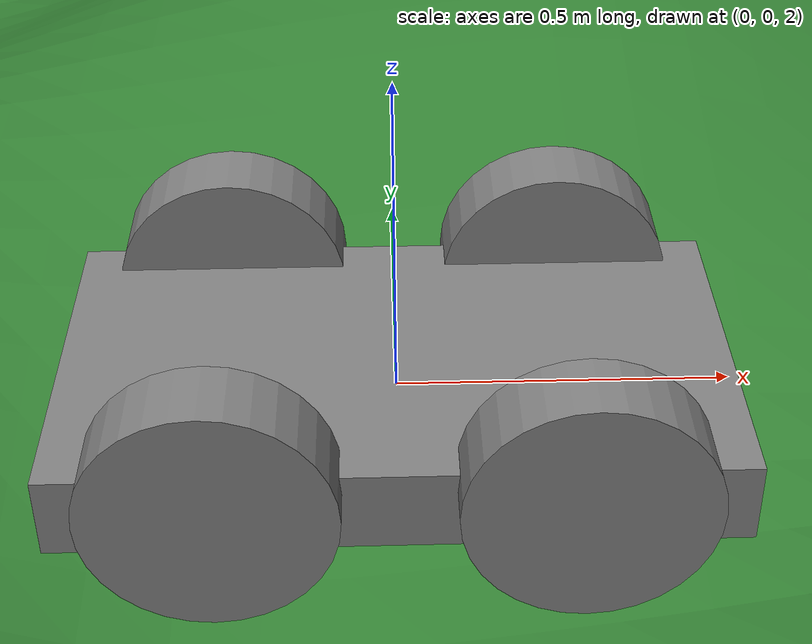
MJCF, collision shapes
<mujoco model="uneven_terrain_scene_mjx">
  <compiler angle="radian" coordinate="local" meshdir="./stls/dual_ur5_husky" texturedir="./textures"/>

  <option timestep="0.002"
          iterations="10"
          tolerance="1e-10"
          impratio="10"
          gravity="0 0 -9.81"
          solver="Newton"
          cone="elliptic"/>

  <size nuserdata="100" njmax="500" nconmax="1000" nstack="600000" nuser_body="9" nuser_jnt="1" nuser_site="1" nuser_tendon="1" nuser_actuator="12" nuser_sensor="1"/>

  <visual>
    <headlight diffuse="0.6 0.6 0.6" ambient="0.3 0.3 0.3" specular="0 0 0"/>
    <rgba haze="0.15 0.25 0.35 1"/>
    <global offwidth="2048" offheight="1536" azimuth="-120" elevation="-20"/>
    <map fogstart="3" fogend="5" force="0.1" znear="0.1"/>
    <quality shadowsize="8192"/>
  </visual>

  <default>
    <geom contype="1" conaffinity="1" margin="0.002" solimp="0.95 0.95 0.01" solref="0.01 1" condim="4" friction="1.2 0.05 0.05"/>
    <joint armature="0.01" damping="0.1"/>
    <default class="UR5">
      <joint damping="200"/>
    </default>
    <default class="UR5e">
      <joint damping="100"/>
    </default>
    <default class="GRIPPER">
      <joint damping="5"/>
      <geom rgba="0.424 0.424 0.424 1.0" contype="1" conaffinity="1" margin="0.002" solimp="0.95 0.95 0.01" solref="0.01 1" condim="4" type="mesh"/>
    </default>
    <default class="ur5:blue">
      <geom rgba="0.635 0.784 0.910 1.0"/>
    </default>
    <default class="ur5:grey">
      <geom rgba="0.365 0.365 0.365 1.0"/>
    </default>
    <default class="ur5:black">
      <geom rgba="0.106 0.106 0.106 1.0"/>
    </default>
    <default class="husky:orange">
      <geom rgba="0.996 0.941 0.412 1.0"/>
    </default>
    <default class="husky:black">
      <geom rgba="0.192 0.192 0.192 1.0"/>
    </default>
    <default class="gripper:black">
      <geom rgba="0.424 0.424 0.424 1.0"/>
    </default>
    <default class="gripper:white">
      <geom rgba="0.898 0.898 0.898 1.0" contype="1" conaffinity="1" margin="0.002" solimp="0.95 0.95 0.01" solref="0.01 1" condim="4" type="mesh"/>
    </default>
    <default class="bb2_camera">
      <geom rgba="0.776 0.624 0.294 1.0"/>
    </default>
    <default class="wheel">
      <geom rgba="0.231 0.231 0.231 1.0" friction="2.0 0.1 0.1"/>
    </default>
    <default class="sick_lidar">
      <geom rgba="0.761 0.714 0.576 1.0"/>
    </default>
    <default class="dual_ur5_husky">
      <geom rgba="0.761 0.714 0.576 1.0"/>
    </default>
  </default>

  <asset>
    <texture type="skybox" builtin="gradient" rgb1="0.3 0.5 0.7" rgb2="0 0 0" width="512" height="3072"/>
    <texture builtin="checker" height="512" name="texplane" rgb1="0.2 0.3 0.4" rgb2="0.1 0.15 0.2" type="2d" width="512"/>
    <texture builtin="flat" height="1278" mark="cross" markrgb="1 1 1" name="texgeom" random="0.01" rgb1="0.8 0.6 0.4" rgb2="0.8 0.6 0.4" type="cube" width="127"/>
    <texture name="texture_block" file="block.png" gridsize="3 4" gridlayout=".U..LFRB.D.."/>
    <texture type="skybox" builtin="gradient" rgb1="0.44 0.85 0.56" rgb2="0.46 0.87 0.58" width="32" height="32"/>
    <texture file="can.png" name="tex-can"/>
    <material name="floorplane" reflectance="0.5" texrepeat="1 1" texture="texplane" texuniform="true"/>
    <material name="floor_mat" specular="0" shininess="0.5" reflectance="0" rgba="0.2 0.2 0.2 1"/>
    <material name="table_mat" specular="0" shininess="0.5" reflectance="0" rgba="0.93 0.93 0.93 1"/>
    <material name="block_mat" specular="0" shininess="0.5" reflectance="0" rgba="0.2 0.2 0.2 1"/>
    <material name="puck_mat" specular="0" shininess="0.5" reflectance="0" rgba="0.2 0.2 0.2 1"/>
    <material name="MatPlane" reflectance="0.5" shininess="1" specular="1" texrepeat="60 60" texture="texplane"/>
    <material name="geom" texture="texgeom" texuniform="true"/>
    <material name="robot0:geomMat" shininess="0.03" specular="0.4"/>
    <material name="coke" reflectance="0.7" texrepeat="5 5" texture="tex-can" texuniform="true"/>
    <material name="plain" rgba="0.2 0.5 0.2 1"/>
    <mesh name="base_link" file="base_link.stl"/>
    <mesh name="wheel" file="wheel.stl"/>
    <mesh name="top_chassis" file="top_chassis.stl"/>
    <mesh name="bumper" file="bumper.stl"/>
    <mesh name="dual_arm_bulkhead" file="dual_arm_bulkhead.stl"/>
    <mesh name="flir-ptu-simple" file="flir-ptu-simple.stl"/>
    <mesh name="base" file="base.stl"/>
    <mesh name="shoulder" file="shoulder.stl"/>
    <mesh name="upperarm" file="upperarm.stl"/>
    <mesh name="forearm" file="forearm.stl"/>
    <mesh name="wrist1" file="wrist1.stl"/>
    <mesh name="wrist2" file="wrist2.stl"/>
    <mesh name="wrist3" file="wrist3.stl"/>
    <mesh name="sick-lms1xx" file="sick-lms1xx.stl"/>
    <mesh name="pointgrey_bumblebee2" file="pointgrey_bumblebee2.stl"/>
    <mesh name="robotiq_fts300" file="robotiq_fts300.stl"/>
    <mesh name="link_0" file="link_0.STL"/>
    <mesh name="link_1" file="link_1.STL"/>
    <mesh name="link_2" file="link_2.STL"/>
    <mesh name="link_3" file="link_3.STL"/>
    <mesh name="palm" file="palm.STL"/>
    <mesh name="collision_link_0" file="collision_link_0.STL"/>
    <mesh name="collision_link_1" file="collision_link_1.STL"/>
    <mesh name="collision_link_2" file="collision_link_2.STL"/>
    <mesh name="collision_link_3" file="collision_link_3.STL"/>
    <mesh name="collision_palm" file="collision_palm.STL"/>
    <mesh file="can.stl" name="can_mesh" scale="2.0 2.0 2.0"/>
    <mesh name="terrain_mesh" file="terrain.stl"/>
    <mesh name="wheel_cylinder" file="wheel_cylinder.stl"/>
  </asset>

  <worldbody>
    <camera name="fixed" pos="0 -2 2" zaxis="0 -1 1"/>  <!-- Added camera -->
    <light directional="true" ambient="0.2 0.2 0.2" diffuse="0.8 0.8 0.8" specular="0.3 0.3 0.3" castshadow="false" pos="0 0 4" dir="0 0 -1" name="light0"/>
    <geom name="terrain" type="mesh" mesh="terrain_mesh" material="plain" friction="1.0 0.005 0.0001" condim="6" solimp="0.8 0.9 0.1" solref="0.005 2" margin="0"/>

    <body name="robot0:base_link" pos="0 0 2.0">
      <geom name="base_link_visual" type="mesh" contype="0" conaffinity="0" group="1" mesh="base_link"/>
      <geom name="base_link_collision" size="0.4937 0.28545 0.061875" type="box" friction="1.5 0.1 0.1" margin="0"/>
      <freejoint name="robot0:root"/>
      <inertial diaginertia="1.2869 1.2236 0.9868" mass="70.1294" pos="-0.0036 0 0.0014" quat="0.7605 -0.0133 -0.0061 0.6491"/>
      <geom type="mesh" contype="0" conaffinity="0" group="1" mesh="top_chassis" class="husky:orange"/>
      <geom pos="0.48 0 0.091" type="mesh" contype="0" conaffinity="0" group="1" mesh="bumper"/>
      <geom pos="-0.48 0 0.091" quat="1.32679e-06 0 0 1" type="mesh" contype="0" conaffinity="0" group="1" mesh="bumper"/>
      <geom pos="0 0 0.225" type="mesh" contype="0" conaffinity="0" group="1" mesh="dual_arm_bulkhead"/>
      <geom pos="0.465 0 0.14" quat="1.32679e-06 1 0 0" type="mesh" contype="0" conaffinity="0" group="1" mesh="sick-lms1xx" class="sick_lidar"/>

      <body name="front_left_wheel_link" pos="0.256 0.2854 0.03282">
        <inertial pos="0 0 0" quat="0.5 0.5 -0.5 0.5" mass="200.637" diaginertia="0.04411 0.02467 0.02467"/>
        <joint name="front_left_wheel" pos="0 0 0" axis="0 1 0" damping="0.5" armature="0.05"/>
        <geom type="mesh" contype="0" conaffinity="0" group="1" mesh="wheel" class="wheel"/>
        <geom type="mesh" mesh="wheel_cylinder" friction="1.5 0.1 0.1" margin="0"/>
      </body>
      <body name="front_right_wheel_link" pos="0.256 -0.2854 0.03282">
        <inertial pos="0 0 0" quat="0.5 0.5 -0.5 0.5" mass="200.637" diaginertia="0.04411 0.02467 0.02467"/>
        <joint name="front_right_wheel" pos="0 0 0" axis="0 1 0" damping="0.5" armature="0.05"/>
        <geom type="mesh" contype="0" conaffinity="0" group="1" mesh="wheel" class="wheel"/>
        <geom type="mesh" mesh="wheel_cylinder" friction="1.5 0.1 0.1" margin="0"/>
      </body>
      <body name="rear_left_wheel_link" pos="-0.256 0.2854 0.03282">
        <inertial pos="0 0 0" quat="0.5 0.5 -0.5 0.5" mass="200.637" diaginertia="0.04411 0.02467 0.02467"/>
        <joint name="rear_left_wheel" pos="0 0 0" axis="0 1 0" damping="0.3" armature="0.2"/>
        <geom type="mesh" contype="0" conaffinity="0" group="1" mesh="wheel" class="wheel"/>
        <geom type="mesh" mesh="wheel_cylinder" friction="1.5 0.1 0.1" solimp="0.99 0.99 0.01" solref="0.02 1" margin="0"/>
      </body>
      <body name="rear_right_wheel_link" pos="-0.256 -0.2854 0.03282">
        <inertial pos="0 0 0" quat="0.5 0.5 -0.5 0.5" mass="200.637" diaginertia="0.04411 0.02467 0.02467"/>
        <joint name="rear_right_wheel" pos="0 0 0" axis="0 1 0" damping="0.3" armature="0.2"/>
        <geom type="mesh" contype="0" conaffinity="0" group="1" mesh="wheel" class="wheel"/>
        <geom type="mesh" mesh="wheel_cylinder" friction="1.5 0.1 0.1" solimp="0.99 0.99 0.01" solref="0.02 1" margin="0"/>
      </body>
    </body>
  </worldbody>

  <tendon>
    <fixed name="forward">
      <joint joint="rear_left_wheel" coef="0.5"/>
      <joint joint="rear_right_wheel" coef="0.5"/>
    </fixed>
    <fixed name="turn">
      <joint joint="rear_left_wheel" coef="-0.5"/>
      <joint joint="rear_right_wheel" coef="0.5"/>
    </fixed>
  </tendon>

  <actuator>
    <motor name="forward" tendon="forward" ctrlrange="-8.0 8.0" gear="150"/>
    <motor name="turn" tendon="turn" ctrlrange="-8.0 8.0" gear="150"/>
  </actuator>

  <sensor>
    <jointactuatorfrc name="rear_left_force" joint="rear_left_wheel"/>
    <jointactuatorfrc name="rear_right_force" joint="rear_right_wheel"/>
    <framepos name="base_position" objtype="body" objname="robot0:base_link"/>
    <frameangvel name="base_angular_velocity" objtype="body" objname="robot0:base_link"/>
  </sensor>
</mujoco>
